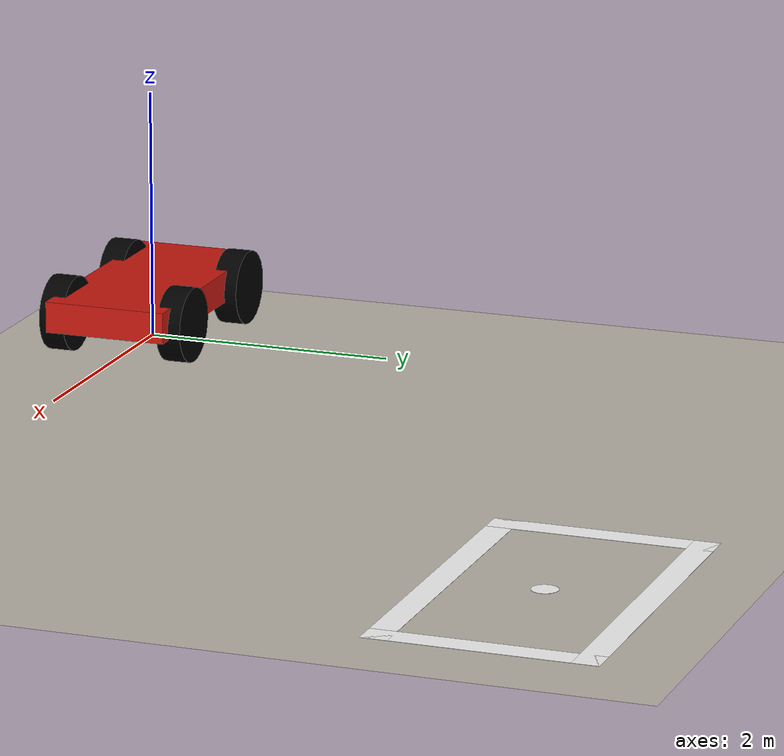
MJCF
<mujoco>
    <asset>
        <material name="target_material" rgba="1 1 1 1" />
    </asset>
    <asset>
        <material name="wheel_material" rgba="0 0 0 1" reflectance="0" shininess="0" emission="0" specular="0.1" />
    </asset>
    <asset>
        <material name="mainCar_chassis_material" rgba="0.8 0.102 0.063 1" reflectance="0" shininess="1" emission="0.0" specular="0.0" />
    </asset>
    <asset>
        <texture name="sky_texture" type="skybox" file="assets/Wispy_Sky-Night_03-512x512.png" />
        <texture name="wall_texture" type="2d" file="assets/Fuzzy_Sky-Night_01-512x512.png" />
        <material name="wall_material" rgba="1 1 1 0.000001" />
        <texture name="ground_texture" type="2d" file="assets/ground.png" />
        <material name="ground_material" texture="ground_texture" texrepeat="25 25" />
    </asset>
    <worldbody>
        <geom name="ground_bottom" type="plane" size="10.0 10.0 2.5" material="ground_material" friction="1.0 0.005 0.0001" />
        <geom name="ground_left" type="box" size="2.5 10.0 10.0" pos="-12.5 0 10.0" material="wall_material" />
        <geom name="ground_right" type="box" size="2.5 10.0 10.0" pos="12.5 0 10.0" material="wall_material" />
        <geom name="ground_front" type="box" size="10.0 2.5 10.0" pos="0 12.5 10.0" material="wall_material" />
        <geom name="ground_back" type="box" size="10.0 2.5 10.0" pos="0 -12.5 10.0" material="wall_material" />
        <geom name="ground_top" type="box" size="10.0 10.0 2.5" pos="0 0 20" rgba="0 0 0 0" />
        <light dir="0 0 -1" pos="0 0 100" diffuse="1 1 1" castshadow="true" />
        <light dir="0.6963106238227914 -0.6963106238227914 0.17407765595569785" pos="-10.0 10.0 2.5" diffuse="0.3 0.3 0.3" castshadow="false" />
        <light dir="-0.6963106238227914 -0.6963106238227914 0.17407765595569785" pos="10.0 10.0 2.5" diffuse="0.3 0.3 0.3" castshadow="false" />
        <light dir="0.6963106238227914 0.6963106238227914 0.17407765595569785" pos="-10.0 -10.0 2.5" diffuse="0.3 0.3 0.3" castshadow="false" />
        <light dir="-0.6963106238227914 0.6963106238227914 0.17407765595569785" pos="10.0 -10.0 2.5" diffuse="0.3 0.3 0.3" castshadow="false" />
        <camera name="TopDownCam" pos="0 0 9.999999999999998" euler="0 0 -90" fovy="90" />
        <body name="mainCar" pos="0 0 0.3625">
            <freejoint />
            <site name="mainCar_center" type="cylinder" size="0.1 0.001" />
            <body name="mainCar_front_lights" pos="1.0 0 0" />
            <body name="mainCar_chassis">
                <geom name="mainCar_chassis_geom" material="mainCar_chassis_material" type="box" size="1.0 0.5 0.125" mass="1500" />
                <site name="mainCar_chassis_site" type="box" size="1.0 0.5 0.125" rgba="0 0 0 0" />
                <body name="mainCar_wheel1" pos="0.6 -0.5 -0.0625" zaxis="0 1 0">
                    <joint name="mainCar_wheel1_joint_steer" type="hinge" axis="0 1 0" limited="true" range="-45 45" />
                    <joint name="mainCar_wheel1_joint_roll" />
                    <geom type="cylinder" size="0.3 0.1" material="wheel_material" mass="30" friction="1 0.001 0.001" />
                </body>
                <body name="mainCar_wheel2" pos="0.6 0.5 -0.0625" zaxis="0 1 0">
                    <joint name="mainCar_wheel2_joint_steer" type="hinge" axis="0 1 0" limited="true" range="-45 45" />
                    <joint name="mainCar_wheel2_joint_roll" />
                    <geom type="cylinder" size="0.3 0.1" material="wheel_material" mass="30" friction="1 0.001 0.001" />
                </body>
                <body name="mainCar_wheel3" pos="-0.6 -0.5 -0.0625" zaxis="0 1 0">
                    <joint name="mainCar_wheel3_joint_roll" />
                    <geom type="cylinder" size="0.3 0.1" material="wheel_material" mass="30" friction="1 0.001 0.001" />
                </body>
                <body name="mainCar_wheel4" pos="-0.6 0.5 -0.0625" zaxis="0 1 0">
                    <joint name="mainCar_wheel4_joint_roll" />
                    <geom type="cylinder" size="0.3 0.1" material="wheel_material" mass="30" friction="1 0.001 0.001" />
                </body>
            </body>
            <site name="mainCar_sensor_site_0" type="sphere" size="1e-06 1e-06" pos="1.001 0.5005 0.0" zaxis="1.001 0.5005 0.0" />
            <site name="mainCar_sensor_site_1" type="sphere" size="1e-06 1e-06" pos="1.001 0.0 0.0" zaxis="1.001 0.0 0.0" />
            <site name="mainCar_sensor_site_2" type="sphere" size="1e-06 1e-06" pos="1.001 -0.5005 0.0" zaxis="1.001 -0.5005 0.0" />
            <site name="mainCar_sensor_site_3" type="sphere" size="1e-06 1e-06" pos="-1.001 0.5005 0.0" zaxis="-1.001 0.5005 0.0" />
            <site name="mainCar_sensor_site_4" type="sphere" size="1e-06 1e-06" pos="-1.001 0.0 0.0" zaxis="-1.001 0.0 0.0" />
            <site name="mainCar_sensor_site_5" type="sphere" size="1e-06 1e-06" pos="-1.001 -0.5005 0.0" zaxis="-1.001 -0.5005 0.0" />
            <site name="mainCar_sensor_site_6" type="sphere" size="1e-06 1e-06" pos="0.0 0.5005 0.0" zaxis="0.0 0.5005 0.0" />
            <site name="mainCar_sensor_site_7" type="sphere" size="1e-06 1e-06" pos="0.0 -0.5005 0.0" zaxis="0.0 -0.5005 0.0" />
        </body>
        <body name="target_space" pos="5 5 0">
            <site name="parking_spot_center" type="cylinder" size="0.1 0.001" material="target_material" />
            <geom name="parking_area" type="box" size="1.4 0.85 0.001" pos="0 0 0" friction="1.0 0.005 0.0001" material="target_material" rgba="0 0 0 0" />
            <geom name="parking_edge_1" type="box" size="0.1 0.85 0.001" pos="1.2999999999999998 0 0" friction="1.0 0.005 0.0001" material="target_material" />
            <geom name="parking_edge_2" type="box" size="1.4 0.1 0.001" pos="0 0.75 0" friction="1.0 0.005 0.0001" material="target_material" />
            <geom name="parking_edge_3" type="box" size="1.4 0.1 0.001" pos="0 -0.75 0" friction="1.0 0.005 0.0001" material="target_material" />
            <geom name="parking_edge_4" type="box" size="0.1 0.85 0.001" pos="-1.2999999999999998 0 0" friction="1.0 0.005 0.0001" material="target_material" />
        </body>
    </worldbody>
    <tendon>
        <fixed name="mainCar_back_wheels_tendon">
            <joint joint="mainCar_wheel3_joint_roll" coef="1000" />
            <joint joint="mainCar_wheel4_joint_roll" coef="1000" />
        </fixed>
    </tendon>
    <actuator>
        <motor name="mainCar_engine_power" tendon="mainCar_back_wheels_tendon" ctrlrange="-1 1" />
        <position name="mainCar_wheel1_angle" joint="mainCar_wheel1_joint_steer" kp="1000" ctrlrange="-0.7853981633974483 0.7853981633974483" />
        <position name="mainCar_wheel2_angle" joint="mainCar_wheel2_joint_steer" kp="1000" ctrlrange="-0.7853981633974483 0.7853981633974483" />
    </actuator>
    <sensor>
        <touch name="mainCar_chassis_touch_sensor" site="mainCar_chassis_site" cutoff="5" />
        <velocimeter name="mainCar_speed_sensor" site="mainCar_center" cutoff="10" />
        <framepos name="mainCar_posGlobal_sensor" objtype="site" objname="mainCar_center" />
        <framepos name="mainCar_posTarget_sensor" objtype="site" objname="mainCar_center" reftype="site" refname="parking_spot_center" />
        <rangefinder name="mainCar_sensor_0" site="mainCar_sensor_site_0" cutoff="5" />
        <rangefinder name="mainCar_sensor_1" site="mainCar_sensor_site_1" cutoff="5" />
        <rangefinder name="mainCar_sensor_2" site="mainCar_sensor_site_2" cutoff="5" />
        <rangefinder name="mainCar_sensor_3" site="mainCar_sensor_site_3" cutoff="5" />
        <rangefinder name="mainCar_sensor_4" site="mainCar_sensor_site_4" cutoff="5" />
        <rangefinder name="mainCar_sensor_5" site="mainCar_sensor_site_5" cutoff="5" />
        <rangefinder name="mainCar_sensor_6" site="mainCar_sensor_site_6" cutoff="5" />
        <rangefinder name="mainCar_sensor_7" site="mainCar_sensor_site_7" cutoff="5" />
    </sensor>
</mujoco>
